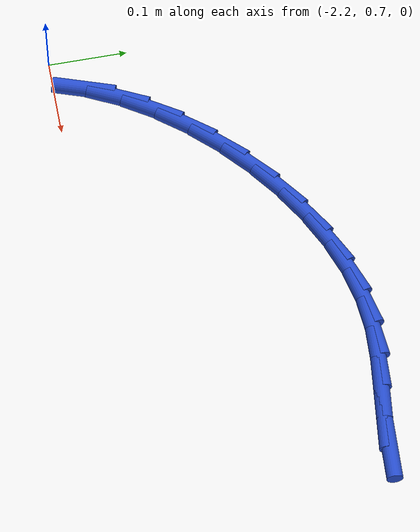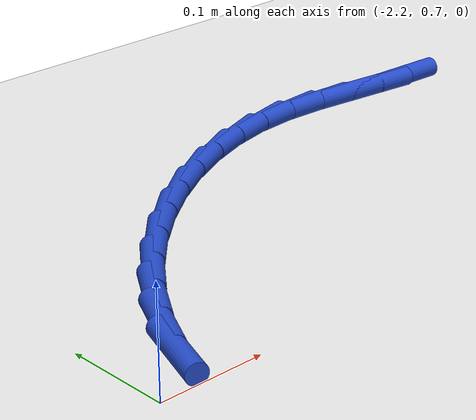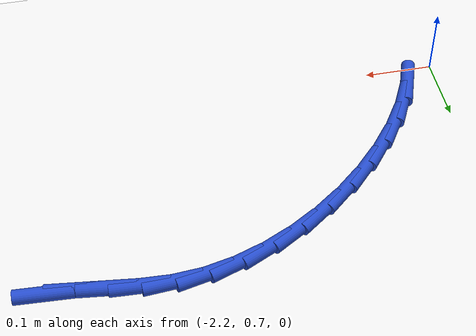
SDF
<sdf version="1.6">
 <world name="default">
  <model name="ground_plane">
   <static>1</static>
   <link name="link">
    <collision name="collision">
     <geometry><plane><normal>0 0 1</normal><size>100 100</size></plane></geometry>
     <surface><friction><ode><mu>100</mu><mu2>50</mu2></ode></friction></surface>
    </collision>
    <visual name="visual">
     <cast_shadows>0</cast_shadows>
     <geometry><plane><normal>0 0 1</normal><size>100 100</size></plane></geometry>
     <material>
      <script><uri>file://media/materials/scripts/gazebo.material</uri><name>Gazebo/WhiteGlow</name></script>
     </material>
    </visual>
   </link>
  </model>
  <model name="line">
   <link name="link_61">
    <pose>-1.5929932055738625 1.011245676633504 0.01 0 1.57 -0.054188244656737626</pose>
    <collision name="collision">
     <geometry><cylinder><radius>0.01</radius><length>0.08</length></cylinder></geometry>
    </collision>
    <visual name="visual">
     <material>
      <script><name>Gazebo/Blue</name><uri>file://media/materials/scripts/gazebo.material</uri></script>
     </material>
     <geometry><cylinder><radius>0.01</radius><length>0.08</length></cylinder></geometry>
    </visual>
   </link>
   <link name="link_62">
    <pose>-1.6320891558927666 1.013366293596658 0.01 0 1.57 -0.11950139520040619</pose>
    <collision name="collision">
     <geometry><cylinder><radius>0.01</radius><length>0.08</length></cylinder></geometry>
    </collision>
    <visual name="visual">
     <material>
      <script><name>Gazebo/Blue</name><uri>file://media/materials/scripts/gazebo.material</uri></script>
     </material>
     <geometry><cylinder><radius>0.01</radius><length>0.08</length></cylinder></geometry>
    </visual>
   </link>
   <link name="link_63">
    <pose>-1.6719325725261487 1.0181504326168003 0.01 0 1.57 -0.11648715165361215</pose>
    <collision name="collision">
     <geometry><cylinder><radius>0.01</radius><length>0.08</length></cylinder></geometry>
    </collision>
    <visual name="visual">
     <material>
      <script><name>Gazebo/Blue</name><uri>file://media/materials/scripts/gazebo.material</uri></script>
     </material>
     <geometry><cylinder><radius>0.01</radius><length>0.08</length></cylinder></geometry>
    </visual>
   </link>
   <link name="link_64">
    <pose>-1.7125980045251417 1.0229089757541316 0.01 0 1.57 -0.049135854828193784</pose>
    <collision name="collision">
     <geometry><cylinder><radius>0.01</radius><length>0.08</length></cylinder></geometry>
    </collision>
    <visual name="visual">
     <material>
      <script><name>Gazebo/Blue</name><uri>file://media/materials/scripts/gazebo.material</uri></script>
     </material>
     <geometry><cylinder><radius>0.01</radius><length>0.08</length></cylinder></geometry>
    </visual>
   </link>
   <link name="link_65">
    <pose>-1.7541600009408793 1.0249528050688523 0.01 0 1.57 0.07701813627680969</pose>
    <collision name="collision">
     <geometry><cylinder><radius>0.01</radius><length>0.08</length></cylinder></geometry>
    </collision>
    <visual name="visual">
     <material>
      <script><name>Gazebo/Blue</name><uri>file://media/materials/scripts/gazebo.material</uri></script>
     </material>
     <geometry><cylinder><radius>0.01</radius><length>0.08</length></cylinder></geometry>
    </visual>
   </link>
   <link name="link_66">
    <pose>-1.7966757400261755 1.0216718321641316 0.01 0 1.57 0.21865178752225276</pose>
    <collision name="collision">
     <geometry><cylinder><radius>0.01</radius><length>0.08</length></cylinder></geometry>
    </collision>
    <visual name="visual">
     <material>
      <script><name>Gazebo/Blue</name><uri>file://media/materials/scripts/gazebo.material</uri></script>
     </material>
     <geometry><cylinder><radius>0.01</radius><length>0.08</length></cylinder></geometry>
    </visual>
   </link>
   <link name="link_67">
    <pose>-1.8398455874431876 1.012079310037524 0.01 0 1.57 0.34186766257549467</pose>
    <collision name="collision">
     <geometry><cylinder><radius>0.01</radius><length>0.08</length></cylinder></geometry>
    </collision>
    <visual name="visual">
     <material>
      <script><name>Gazebo/Blue</name><uri>file://media/materials/scripts/gazebo.material</uri></script>
     </material>
     <geometry><cylinder><radius>0.01</radius><length>0.08</length></cylinder></geometry>
    </visual>
   </link>
   <link name="link_68">
    <pose>-1.88303532794312 0.9967106886514344 0.01 0 1.57 0.4498183488337492</pose>
    <collision name="collision">
     <geometry><cylinder><radius>0.01</radius><length>0.08</length></cylinder></geometry>
    </collision>
    <visual name="visual">
     <material>
      <script><name>Gazebo/Blue</name><uri>file://media/materials/scripts/gazebo.material</uri></script>
     </material>
     <geometry><cylinder><radius>0.01</radius><length>0.08</length></cylinder></geometry>
    </visual>
   </link>
   <link name="link_69">
    <pose>-1.9255978275841434 0.9761601923773388 0.01 0 1.57 0.5468991917893983</pose>
    <collision name="collision">
     <geometry><cylinder><radius>0.01</radius><length>0.08</length></cylinder></geometry>
    </collision>
    <visual name="visual">
     <material>
      <script><name>Gazebo/Blue</name><uri>file://media/materials/scripts/gazebo.material</uri></script>
     </material>
     <geometry><cylinder><radius>0.01</radius><length>0.08</length></cylinder></geometry>
    </visual>
   </link>
   <link name="link_70">
    <pose>-1.9668859524244278 0.951022045586713 0.01 0 1.57 0.6370748763090639</pose>
    <collision name="collision">
     <geometry><cylinder><radius>0.01</radius><length>0.08</length></cylinder></geometry>
    </collision>
    <visual name="visual">
     <material>
      <script><name>Gazebo/Blue</name><uri>file://media/materials/scripts/gazebo.material</uri></script>
     </material>
     <geometry><cylinder><radius>0.01</radius><length>0.08</length></cylinder></geometry>
    </visual>
   </link>
   <link name="link_71">
    <pose>-2.0062525685221435 0.9218904726510323 0.01 0 1.57 0.7239255077234509</pose>
    <collision name="collision">
     <geometry><cylinder><radius>0.01</radius><length>0.08</length></cylinder></geometry>
    </collision>
    <visual name="visual">
     <material>
      <script><name>Gazebo/Blue</name><uri>file://media/materials/scripts/gazebo.material</uri></script>
     </material>
     <geometry><cylinder><radius>0.01</radius><length>0.08</length></cylinder></geometry>
    </visual>
   </link>
   <link name="link_72">
    <pose>-2.0430505419354614 0.8893596979417729 0.01 0 1.57 0.8108367767140033</pose>
    <collision name="collision">
     <geometry><cylinder><radius>0.01</radius><length>0.08</length></cylinder></geometry>
    </collision>
    <visual name="visual">
     <material>
      <script><name>Gazebo/Blue</name><uri>file://media/materials/scripts/gazebo.material</uri></script>
     </material>
     <geometry><cylinder><radius>0.01</radius><length>0.08</length></cylinder></geometry>
    </visual>
   </link>
   <link name="link_73">
    <pose>-2.076632738722551 0.8540239458304107 0.01 0 1.57 0.9012397456134732</pose>
    <collision name="collision">
     <geometry><cylinder><radius>0.01</radius><length>0.08</length></cylinder></geometry>
    </collision>
    <visual name="visual">
     <material>
      <script><name>Gazebo/Blue</name><uri>file://media/materials/scripts/gazebo.material</uri></script>
     </material>
     <geometry><cylinder><radius>0.01</radius><length>0.08</length></cylinder></geometry>
    </visual>
   </link>
   <link name="link_74">
    <pose>-2.106352024941583 0.8164774406884208 0.01 0 1.57 0.9988627425494536</pose>
    <collision name="collision">
     <geometry><cylinder><radius>0.01</radius><length>0.08</length></cylinder></geometry>
    </collision>
    <visual name="visual">
     <material>
      <script><name>Gazebo/Blue</name><uri>file://media/materials/scripts/gazebo.material</uri></script>
     </material>
     <geometry><cylinder><radius>0.01</radius><length>0.08</length></cylinder></geometry>
    </visual>
   </link>
   <link name="link_75">
    <pose>-2.1315612666507273 0.7773144068872793 0.01 0 1.57 1.107957414676053</pose>
    <collision name="collision">
     <geometry><cylinder><radius>0.01</radius><length>0.08</length></cylinder></geometry>
    </collision>
    <visual name="visual">
     <material>
      <script><name>Gazebo/Blue</name><uri>file://media/materials/scripts/gazebo.material</uri></script>
     </material>
     <geometry><cylinder><radius>0.01</radius><length>0.08</length></cylinder></geometry>
    </visual>
   </link>
   <link name="link_76">
    <pose>-2.1516133299081543 0.7371290687984621 0.01 0 1.57 1.233396628866156</pose>
    <collision name="collision">
     <geometry><cylinder><radius>0.01</radius><length>0.08</length></cylinder></geometry>
    </collision>
    <visual name="visual">
     <material>
      <script><name>Gazebo/Blue</name><uri>file://media/materials/scripts/gazebo.material</uri></script>
     </material>
     <geometry><cylinder><radius>0.01</radius><length>0.08</length></cylinder></geometry>
    </visual>
   </link>
  </model>
 </world>
</sdf>
